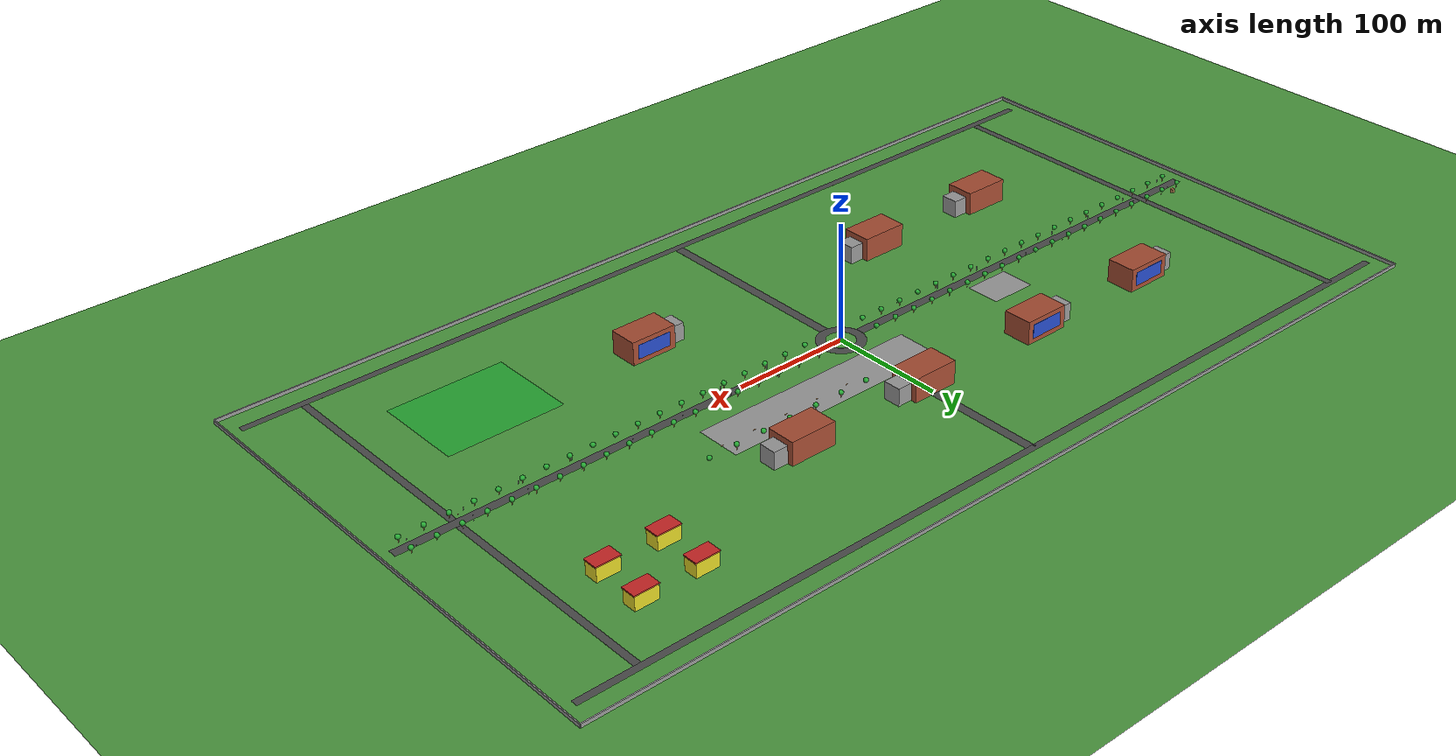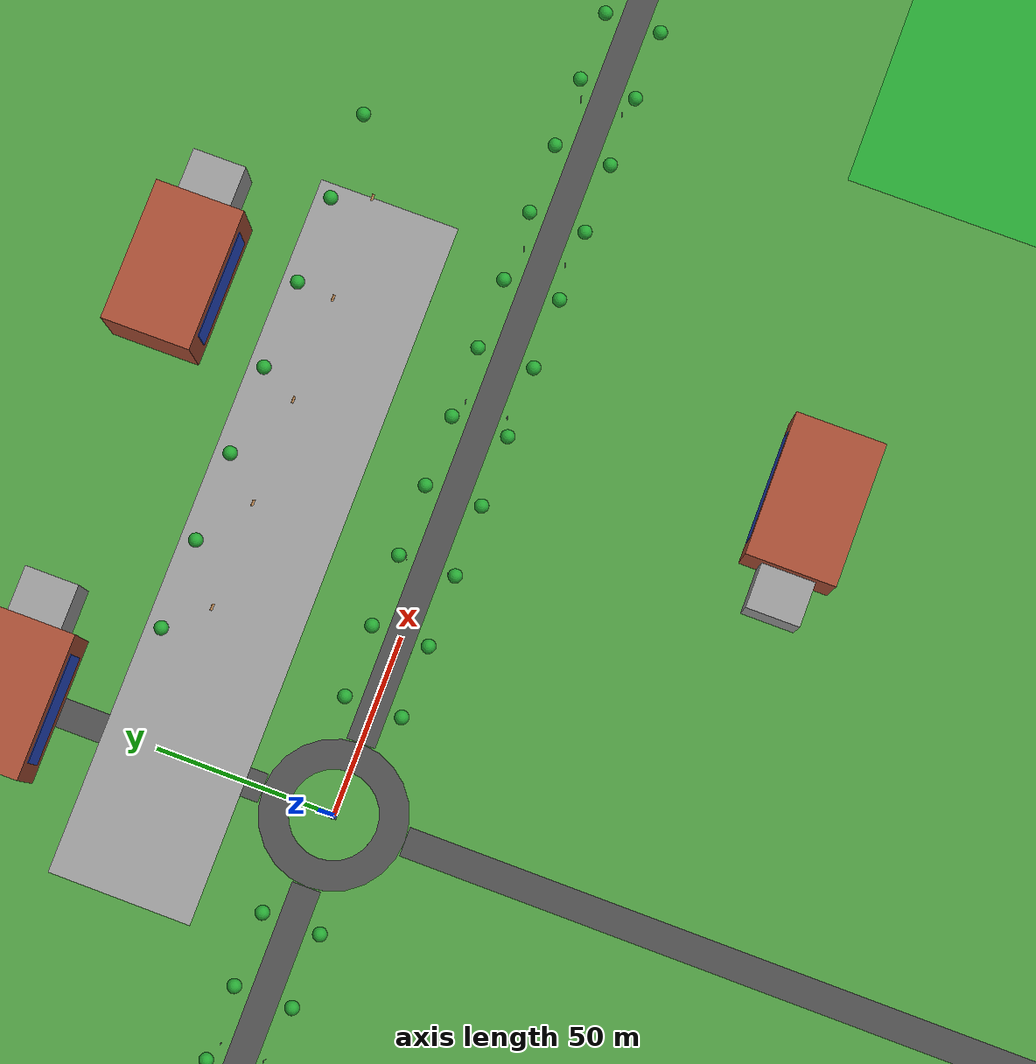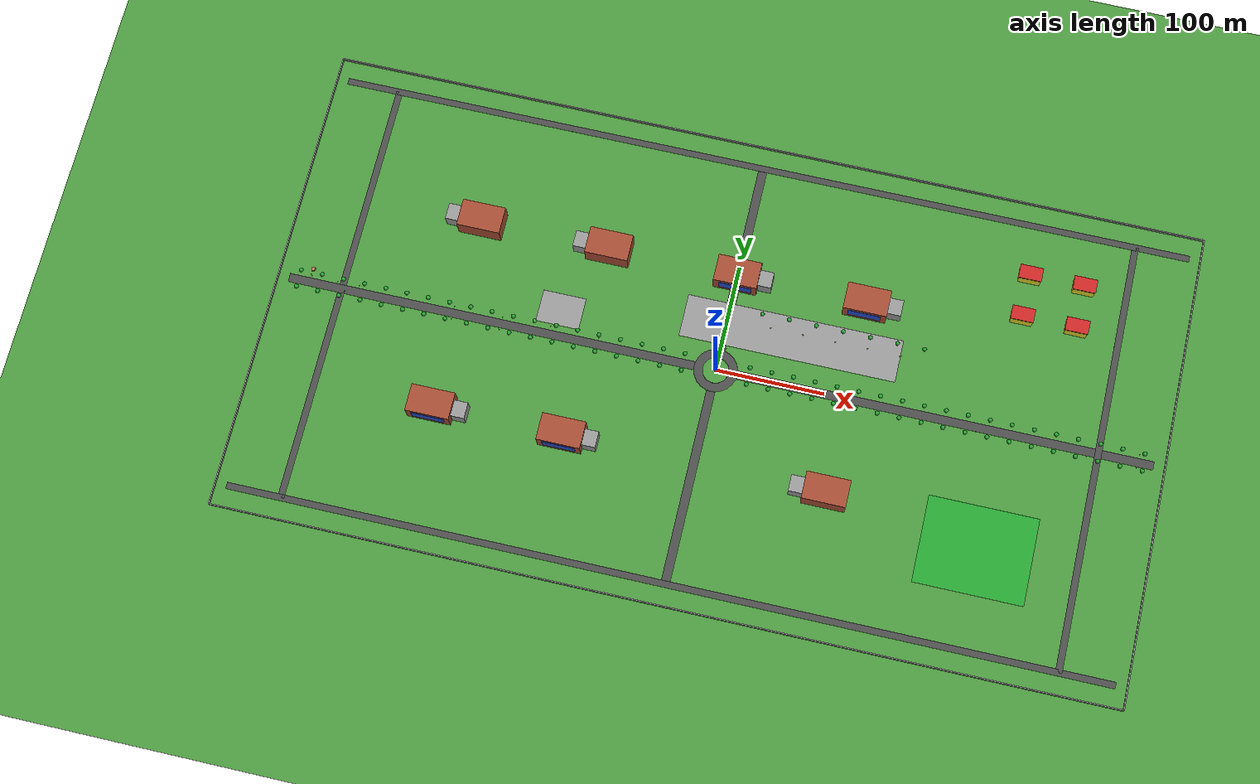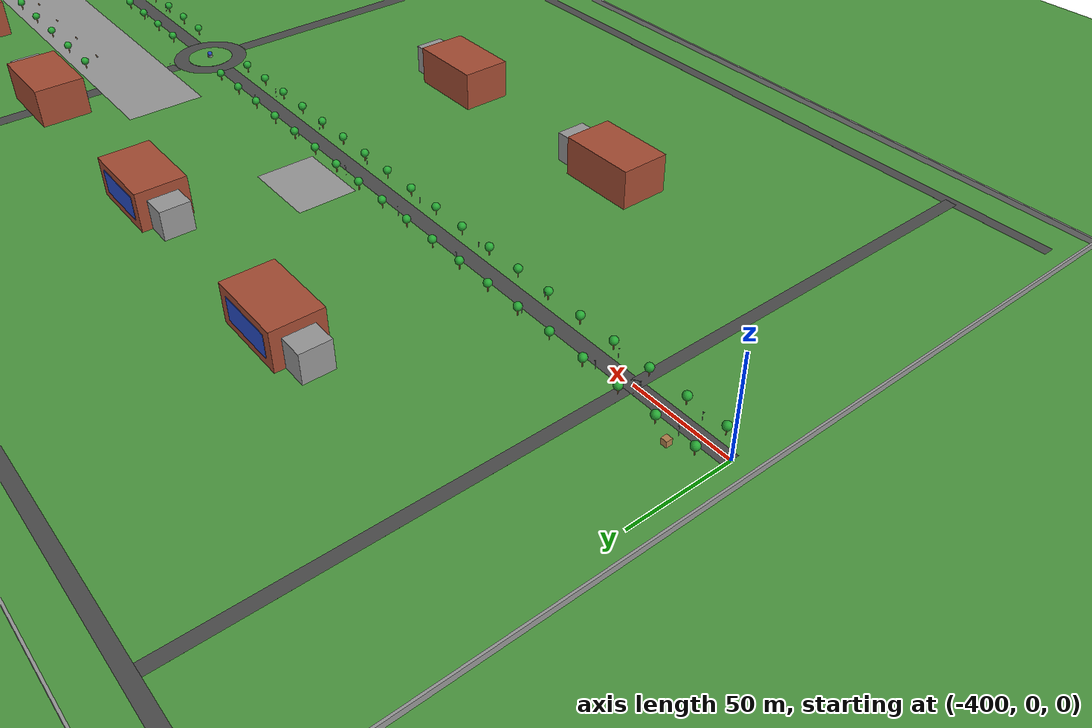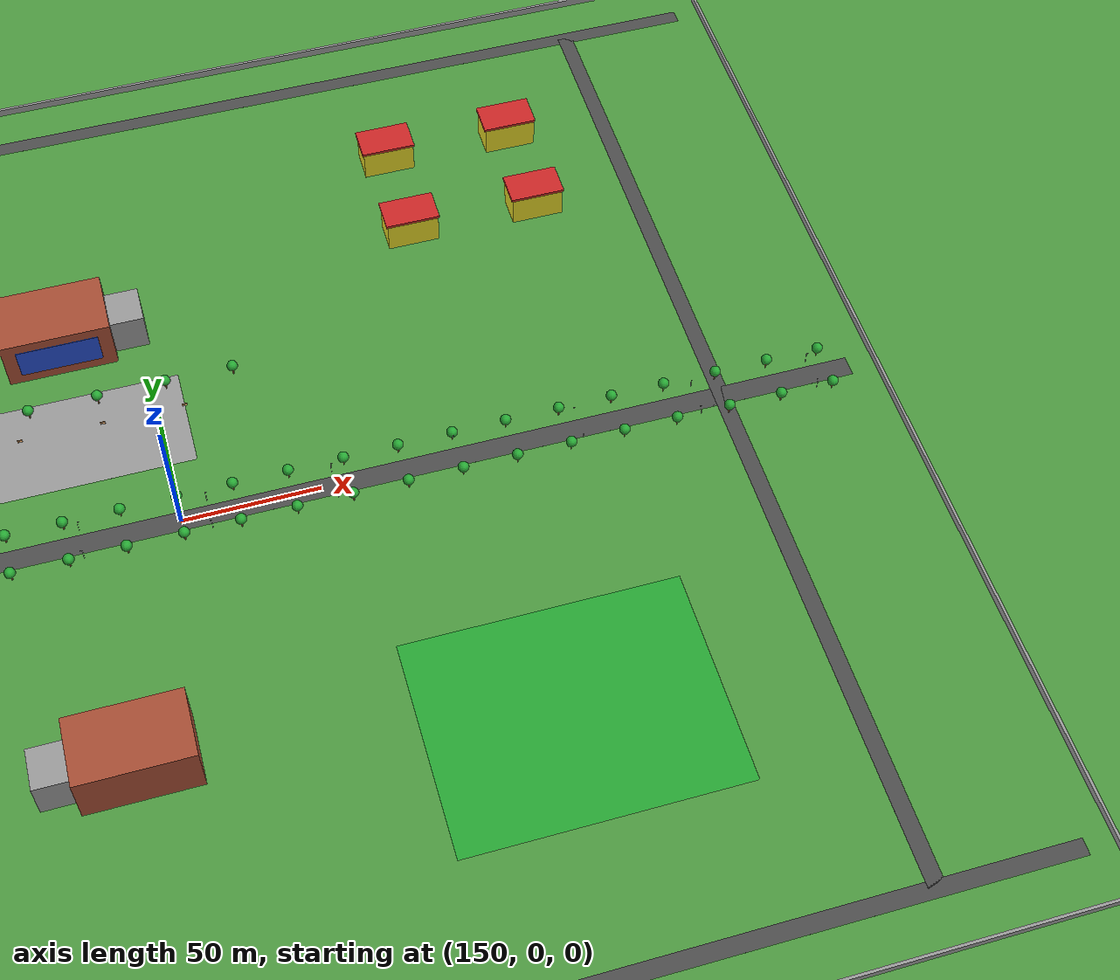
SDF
<sdf version="1.6">
 <world name="campus_world">
  <light name="sun" type="directional">
   <pose>0 0 50 0 0 0</pose>
   <diffuse>0.8 0.8 0.8 1</diffuse>
   <specular>0.1 0.1 0.1 1</specular>
   <attenuation>
    <range>1000</range>
    <constant>0.9</constant>
    <linear>0.01</linear>
    <quadratic>0.001</quadratic>
   </attenuation>
   <direction>-0.5 0.1 -0.9</direction>
  </light>
  <model name="ground_plane">
   <static>true</static>
   <link name="link">
    <collision name="collision">
     <geometry><plane><normal>0 0 1</normal><size>1000 1000</size></plane></geometry>
     <surface><friction><ode><mu>0.8</mu><mu2>0.8</mu2></ode></friction></surface>
    </collision>
    <visual name="visual">
     <cast_shadows>false</cast_shadows>
     <geometry><plane><normal>0 0 1</normal><size>1000 1000</size></plane></geometry>
     <material>
      <script><uri>file://media/materials/scripts/gazebo.material</uri><name>Gazebo/Grass</name></script>
     </material>
    </visual>
   </link>
  </model>
  <model name="road_main_west">
   <static>true</static>
   <link name="link">
    <visual name="visual">
     <pose>-210 0 0.002 0 0 0</pose>
     <geometry><box><size>380 8 0.004</size></box></geometry>
     <material>
      <script><uri>file://media/materials/scripts/gazebo.material</uri><name>Gazebo/Road</name></script>
     </material>
    </visual>
    <collision name="collision">
     <pose>-210 0 0.002 0 0 0</pose>
     <geometry><box><size>380 8 0.004</size></box></geometry>
    </collision>
   </link>
  </model>
  <model name="road_main_east">
   <static>true</static>
   <link name="link">
    <visual name="visual">
     <pose>210 0 0.002 0 0 0</pose>
     <geometry><box><size>380 8 0.004</size></box></geometry>
     <material>
      <script><uri>file://media/materials/scripts/gazebo.material</uri><name>Gazebo/Road</name></script>
     </material>
    </visual>
    <collision name="collision">
     <pose>210 0 0.002 0 0 0</pose>
     <geometry><box><size>380 8 0.004</size></box></geometry>
    </collision>
   </link>
  </model>
  <model name="road_north">
   <static>true</static>
   <link name="link">
    <visual name="visual">
     <pose>0 200 0.002 0 0 0</pose>
     <geometry><box><size>800 6 0.004</size></box></geometry>
     <material>
      <script><uri>file://media/materials/scripts/gazebo.material</uri><name>Gazebo/Road</name></script>
     </material>
    </visual>
    <collision name="collision">
     <pose>0 200 0.002 0 0 0</pose>
     <geometry><box><size>800 6 0.004</size></box></geometry>
    </collision>
   </link>
  </model>
  <model name="road_south">
   <static>true</static>
   <link name="link">
    <visual name="visual">
     <pose>0 -200 0.002 0 0 0</pose>
     <geometry><box><size>800 6 0.004</size></box></geometry>
     <material>
      <script><uri>file://media/materials/scripts/gazebo.material</uri><name>Gazebo/Road</name></script>
     </material>
    </visual>
    <collision name="collision">
     <pose>0 -200 0.002 0 0 0</pose>
     <geometry><box><size>800 6 0.004</size></box></geometry>
    </collision>
   </link>
  </model>
  <model name="road_conn_west">
   <static>true</static>
   <link name="link">
    <visual name="visual">
     <pose>-350 0 0.002 0 0 0</pose>
     <geometry><box><size>6 400 0.004</size></box></geometry>
     <material>
      <script><uri>file://media/materials/scripts/gazebo.material</uri><name>Gazebo/Road</name></script>
     </material>
    </visual>
    <collision name="collision">
     <pose>-350 0 0.002 0 0 0</pose>
     <geometry><box><size>6 400 0.004</size></box></geometry>
    </collision>
   </link>
  </model>
  <model name="road_conn_east">
   <static>true</static>
   <link name="link">
    <visual name="visual">
     <pose>350 0 0.002 0 0 0</pose>
     <geometry><box><size>6 400 0.004</size></box></geometry>
     <material>
      <script><uri>file://media/materials/scripts/gazebo.material</uri><name>Gazebo/Road</name></script>
     </material>
    </visual>
    <collision name="collision">
     <pose>350 0 0.002 0 0 0</pose>
     <geometry><box><size>6 400 0.004</size></box></geometry>
    </collision>
   </link>
  </model>
  <model name="road_conn_central_north">
   <static>true</static>
   <link name="link">
    <visual name="visual">
     <pose>0 110 0.002 0 0 0</pose>
     <geometry><box><size>8 180 0.004</size></box></geometry>
     <material>
      <script><uri>file://media/materials/scripts/gazebo.material</uri><name>Gazebo/Road</name></script>
     </material>
    </visual>
    <collision name="collision">
     <pose>0 110 0.002 0 0 0</pose>
     <geometry><box><size>8 180 0.004</size></box></geometry>
    </collision>
   </link>
  </model>
  <model name="road_conn_central_south">
   <static>true</static>
   <link name="link">
    <visual name="visual">
     <pose>0 -110 0.002 0 0 0</pose>
     <geometry><box><size>8 180 0.004</size></box></geometry>
     <material>
      <script><uri>file://media/materials/scripts/gazebo.material</uri><name>Gazebo/Road</name></script>
     </material>
    </visual>
    <collision name="collision">
     <pose>0 -110 0.002 0 0 0</pose>
     <geometry><box><size>8 180 0.004</size></box></geometry>
    </collision>
   </link>
  </model>
  <model name="roundabout_road">
   <static>true</static>
   <link name="link">
    <visual name="visual">
     <pose>0 0 0.001 0 0 0</pose>
     <geometry><cylinder><radius>20.0</radius><length>0.002</length></cylinder></geometry>
     <material>
      <script><uri>file://media/materials/scripts/gazebo.material</uri><name>Gazebo/Road</name></script>
     </material>
    </visual>
    <collision name="collision">
     <pose>0 0 0.001 0 0 0</pose>
     <geometry><cylinder><radius>20.0</radius><length>0.002</length></cylinder></geometry>
    </collision>
   </link>
  </model>
  <model name="roundabout_island">
   <static>true</static>
   <link name="link">
    <visual name="visual">
     <pose>0 0 0.08 0 0 0</pose>
     <geometry><cylinder><radius>12.0</radius><length>0.16</length></cylinder></geometry>
     <material>
      <script><uri>file://media/materials/scripts/gazebo.material</uri><name>Gazebo/Grass</name></script>
     </material>
    </visual>
    <collision name="collision">
     <pose>0 0 0.08 0 0 0</pose>
     <geometry><cylinder><radius>12.0</radius><length>0.16</length></cylinder></geometry>
    </collision>
   </link>
  </model>
  <model name="roundabout_statue">
   <static>true</static>
   <pose>0 0 0.16 0 0 0</pose>
   <link name="link">
    <visual name="pedestal">
     <pose>0 0 0.5 0 0 0</pose>
     <geometry><box><size>2.0 2.0 1.0</size></box></geometry>
     <material>
      <script><uri>file://media/materials/scripts/gazebo.material</uri><name>Gazebo/Grey</name></script>
     </material>
    </visual>
    <visual name="art">
     <pose>0 0 2.0 0 0 0</pose>
     <geometry><sphere><radius>1.2</radius></sphere></geometry>
     <material>
      <script>
       <uri>file://media/materials/scripts/gazebo.material</uri>
       <name>Gazebo/ClearBlueHighlight</name>
      </script>
     </material>
    </visual>
    <collision name="collision">
     <pose>0 0 1.5 0 0 0</pose>
     <geometry><cylinder><radius>1.5</radius><length>3.0</length></cylinder></geometry>
    </collision>
   </link>
  </model>
  <include>
   <name>admin_building</name>
   <uri>model://academic_building</uri>
   <pose>0 90 0 0 0 3.1415</pose>
  </include>
  <include><name>library</name><uri>model://academic_building</uri><pose>120 90 0 0 0 3.1415</pose></include>
  <include><name>academic_a</name><uri>model://academic_building</uri><pose>-120 90 0 0 0 0.0</pose></include>
  <include><name>academic_b</name><uri>model://academic_building</uri><pose>-240 90 0 0 0 0.0</pose></include>
  <include><name>auditorium</name><uri>model://academic_building</uri><pose>120 -90 0 0 0 0.0</pose></include>
  <include>
   <name>cafeteria</name>
   <uri>model://academic_building</uri>
   <pose>-120 -90 0 0 0 3.1415</pose>
  </include>
  <include>
   <name>laboratories</name>
   <uri>model://academic_building</uri>
   <pose>-240 -90 0 0 0 3.1415</pose>
  </include>
  <include><name>hostel_a</name><uri>model://campus_house</uri><pose>260 110 0 0 0 0.0</pose></include>
  <include><name>hostel_b</name><uri>model://campus_house</uri><pose>260 150 0 0 0 0.0</pose></include>
  <include><name>hostel_c</name><uri>model://campus_house</uri><pose>310 110 0 0 0 3.1415</pose></include>
  <include><name>hostel_d</name><uri>model://campus_house</uri><pose>310 150 0 0 0 3.1415</pose></include>
  <model name="library_plaza">
   <static>true</static>
   <link name="link">
    <visual name="visual">
     <pose>60 45 0.005 0 0 0</pose>
     <geometry><box><size>200 40 0.002</size></box></geometry>
     <material>
      <script><uri>file://media/materials/scripts/gazebo.material</uri><name>Gazebo/Grey</name></script>
     </material>
    </visual>
    <collision name="collision">
     <pose>60 45 0.005 0 0 0</pose>
     <geometry><box><size>200 40 0.002</size></box></geometry>
    </collision>
   </link>
  </model>
  <model name="sports_ground">
   <static>true</static>
   <link name="link">
    <visual name="visual">
     <pose>260 -110 0.003 0 0 0</pose>
     <geometry><box><size>100 80 0.001</size></box></geometry>
     <material>
      <script><uri>file://media/materials/scripts/gazebo.material</uri><name>Gazebo/Green</name></script>
     </material>
    </visual>
   </link>
  </model>
  <model name="entrance_security_cabin">
   <static>true</static>
   <pose>-380 12 0 0 0 0</pose>
   <link name="link">
    <visual name="cabin">
     <pose>0 0 1.5 0 0 0</pose>
     <geometry><box><size>3 3 3</size></box></geometry>
     <material>
      <script><uri>file://media/materials/scripts/gazebo.material</uri><name>Gazebo/Wood</name></script>
     </material>
    </visual>
    <collision name="collision">
     <pose>0 0 1.5 0 0 0</pose>
     <geometry><box><size>3 3 3</size></box></geometry>
    </collision>
   </link>
  </model>
  <model name="parking_lot">
   <static>true</static>
   <link name="link">
    <visual name="visual">
     <pose>-150 25 0.003 0 0 0</pose>
     <geometry><box><size>40 30 0.002</size></box></geometry>
     <material>
      <script><uri>file://media/materials/scripts/gazebo.material</uri><name>Gazebo/Grey</name></script>
     </material>
    </visual>
    <collision name="collision">
     <pose>-150 25 0.003 0 0 0</pose>
     <geometry><box><size>40 30 0.002</size></box></geometry>
    </collision>
   </link>
  </model>
  <include>
   <name>street_light_main_n_0</name>
   <uri>model://street_light</uri>
   <pose>-380 6.0 0 0 0 0</pose>
  </include>
  <include>
   <name>street_light_main_s_0</name>
   <uri>model://street_light</uri>
   <pose>-380 -6.0 0 0 0 3.1415</pose>
  </include>
  <include>
   <name>street_light_main_n_1</name>
   <uri>model://street_light</uri>
   <pose>-335 6.0 0 0 0 0</pose>
  </include>
  <include>
   <name>street_light_main_s_1</name>
   <uri>model://street_light</uri>
   <pose>-335 -6.0 0 0 0 3.1415</pose>
  </include>
  <include>
   <name>street_light_main_n_2</name>
   <uri>model://street_light</uri>
   <pose>-290 6.0 0 0 0 0</pose>
  </include>
  <include>
   <name>street_light_main_s_2</name>
   <uri>model://street_light</uri>
   <pose>-290 -6.0 0 0 0 3.1415</pose>
  </include>
  <include>
   <name>street_light_main_n_3</name>
   <uri>model://street_light</uri>
   <pose>-245 6.0 0 0 0 0</pose>
  </include>
  <include>
   <name>street_light_main_s_3</name>
   <uri>model://street_light</uri>
   <pose>-245 -6.0 0 0 0 3.1415</pose>
  </include>
  <include>
   <name>street_light_main_n_4</name>
   <uri>model://street_light</uri>
   <pose>-200 6.0 0 0 0 0</pose>
  </include>
  <include>
   <name>street_light_main_s_4</name>
   <uri>model://street_light</uri>
   <pose>-200 -6.0 0 0 0 3.1415</pose>
  </include>
  <include>
   <name>street_light_main_n_5</name>
   <uri>model://street_light</uri>
   <pose>-155 6.0 0 0 0 0</pose>
  </include>
  <include>
   <name>street_light_main_s_5</name>
   <uri>model://street_light</uri>
   <pose>-155 -6.0 0 0 0 3.1415</pose>
  </include>
  <include>
   <name>street_light_main_n_6</name>
   <uri>model://street_light</uri>
   <pose>-110 6.0 0 0 0 0</pose>
  </include>
  <include>
   <name>street_light_main_s_6</name>
   <uri>model://street_light</uri>
   <pose>-110 -6.0 0 0 0 3.1415</pose>
  </include>
  <include>
   <name>street_light_main_n_7</name>
   <uri>model://street_light</uri>
   <pose>-65 6.0 0 0 0 0</pose>
  </include>
  <include>
   <name>street_light_main_s_7</name>
   <uri>model://street_light</uri>
   <pose>-65 -6.0 0 0 0 3.1415</pose>
  </include>
  <include>
   <name>street_light_main_n_8</name>
   <uri>model://street_light</uri>
   <pose>70 6.0 0 0 0 0</pose>
  </include>
  <include>
   <name>street_light_main_s_8</name>
   <uri>model://street_light</uri>
   <pose>70 -6.0 0 0 0 3.1415</pose>
  </include>
  <include>
   <name>street_light_main_n_9</name>
   <uri>model://street_light</uri>
   <pose>115 6.0 0 0 0 0</pose>
  </include>
  <include>
   <name>street_light_main_s_9</name>
   <uri>model://street_light</uri>
   <pose>115 -6.0 0 0 0 3.1415</pose>
  </include>
  <include>
   <name>street_light_main_n_10</name>
   <uri>model://street_light</uri>
   <pose>160 6.0 0 0 0 0</pose>
  </include>
  <include>
   <name>street_light_main_s_10</name>
   <uri>model://street_light</uri>
   <pose>160 -6.0 0 0 0 3.1415</pose>
  </include>
  <include>
   <name>street_light_main_n_11</name>
   <uri>model://street_light</uri>
   <pose>205 6.0 0 0 0 0</pose>
  </include>
  <include>
   <name>street_light_main_s_11</name>
   <uri>model://street_light</uri>
   <pose>205 -6.0 0 0 0 3.1415</pose>
  </include>
  <include>
   <name>street_light_main_n_12</name>
   <uri>model://street_light</uri>
   <pose>250 6.0 0 0 0 0</pose>
  </include>
  <include>
   <name>street_light_main_s_12</name>
   <uri>model://street_light</uri>
   <pose>250 -6.0 0 0 0 3.1415</pose>
  </include>
  <include>
   <name>street_light_main_n_13</name>
   <uri>model://street_light</uri>
   <pose>295 6.0 0 0 0 0</pose>
  </include>
  <include>
   <name>street_light_main_s_13</name>
   <uri>model://street_light</uri>
   <pose>295 -6.0 0 0 0 3.1415</pose>
  </include>
  <include>
   <name>street_light_main_n_14</name>
   <uri>model://street_light</uri>
   <pose>340 6.0 0 0 0 0</pose>
  </include>
  <include>
   <name>street_light_main_s_14</name>
   <uri>model://street_light</uri>
   <pose>340 -6.0 0 0 0 3.1415</pose>
  </include>
  <include>
   <name>street_light_main_n_15</name>
   <uri>model://street_light</uri>
   <pose>385 6.0 0 0 0 0</pose>
  </include>
  <include>
   <name>street_light_main_s_15</name>
   <uri>model://street_light</uri>
   <pose>385 -6.0 0 0 0 3.1415</pose>
  </include>
  <include><name>tree_main_n_0</name><uri>model://campus_tree</uri><pose>-390 8.0 0 0 0 0</pose></include>
  <include><name>tree_main_s_0</name><uri>model://campus_tree</uri><pose>-390 -8.0 0 0 0 0</pose></include>
  <include><name>tree_main_n_1</name><uri>model://campus_tree</uri><pose>-370 8.0 0 0 0 0</pose></include>
  <include><name>tree_main_s_1</name><uri>model://campus_tree</uri><pose>-370 -8.0 0 0 0 0</pose></include>
  <include><name>tree_main_n_2</name><uri>model://campus_tree</uri><pose>-350 8.0 0 0 0 0</pose></include>
  <include><name>tree_main_s_2</name><uri>model://campus_tree</uri><pose>-350 -8.0 0 0 0 0</pose></include>
  <include><name>tree_main_n_3</name><uri>model://campus_tree</uri><pose>-330 8.0 0 0 0 0</pose></include>
  <include><name>tree_main_s_3</name><uri>model://campus_tree</uri><pose>-330 -8.0 0 0 0 0</pose></include>
  <include><name>tree_main_n_4</name><uri>model://campus_tree</uri><pose>-310 8.0 0 0 0 0</pose></include>
  <include><name>tree_main_s_4</name><uri>model://campus_tree</uri><pose>-310 -8.0 0 0 0 0</pose></include>
  <include><name>tree_main_n_5</name><uri>model://campus_tree</uri><pose>-290 8.0 0 0 0 0</pose></include>
  <include><name>tree_main_s_5</name><uri>model://campus_tree</uri><pose>-290 -8.0 0 0 0 0</pose></include>
  <include><name>tree_main_n_6</name><uri>model://campus_tree</uri><pose>-270 8.0 0 0 0 0</pose></include>
  <include><name>tree_main_s_6</name><uri>model://campus_tree</uri><pose>-270 -8.0 0 0 0 0</pose></include>
  <include><name>tree_main_n_7</name><uri>model://campus_tree</uri><pose>-250 8.0 0 0 0 0</pose></include>
  <include><name>tree_main_s_7</name><uri>model://campus_tree</uri><pose>-250 -8.0 0 0 0 0</pose></include>
  <include><name>tree_main_n_8</name><uri>model://campus_tree</uri><pose>-230 8.0 0 0 0 0</pose></include>
  <include><name>tree_main_s_8</name><uri>model://campus_tree</uri><pose>-230 -8.0 0 0 0 0</pose></include>
  <include><name>tree_main_n_9</name><uri>model://campus_tree</uri><pose>-210 8.0 0 0 0 0</pose></include>
  <include><name>tree_main_s_9</name><uri>model://campus_tree</uri><pose>-210 -8.0 0 0 0 0</pose></include>
  <include><name>tree_main_n_10</name><uri>model://campus_tree</uri><pose>-190 8.0 0 0 0 0</pose></include>
  <include><name>tree_main_s_10</name><uri>model://campus_tree</uri><pose>-190 -8.0 0 0 0 0</pose></include>
  <include><name>tree_main_n_11</name><uri>model://campus_tree</uri><pose>-170 8.0 0 0 0 0</pose></include>
  <include><name>tree_main_s_11</name><uri>model://campus_tree</uri><pose>-170 -8.0 0 0 0 0</pose></include>
  <include><name>tree_main_n_12</name><uri>model://campus_tree</uri><pose>-150 8.0 0 0 0 0</pose></include>
  <include><name>tree_main_s_12</name><uri>model://campus_tree</uri><pose>-150 -8.0 0 0 0 0</pose></include>
  <include><name>tree_main_n_13</name><uri>model://campus_tree</uri><pose>-130 8.0 0 0 0 0</pose></include>
  <include><name>tree_main_s_13</name><uri>model://campus_tree</uri><pose>-130 -8.0 0 0 0 0</pose></include>
  <include><name>tree_main_n_14</name><uri>model://campus_tree</uri><pose>-110 8.0 0 0 0 0</pose></include>
  <include><name>tree_main_s_14</name><uri>model://campus_tree</uri><pose>-110 -8.0 0 0 0 0</pose></include>
  <include><name>tree_main_n_15</name><uri>model://campus_tree</uri><pose>-90 8.0 0 0 0 0</pose></include>
  <include><name>tree_main_s_15</name><uri>model://campus_tree</uri><pose>-90 -8.0 0 0 0 0</pose></include>
  <include><name>tree_main_n_16</name><uri>model://campus_tree</uri><pose>-70 8.0 0 0 0 0</pose></include>
  <include><name>tree_main_s_16</name><uri>model://campus_tree</uri><pose>-70 -8.0 0 0 0 0</pose></include>
  <include><name>tree_main_n_17</name><uri>model://campus_tree</uri><pose>-50 8.0 0 0 0 0</pose></include>
  <include><name>tree_main_s_17</name><uri>model://campus_tree</uri><pose>-50 -8.0 0 0 0 0</pose></include>
  <include><name>tree_main_n_18</name><uri>model://campus_tree</uri><pose>-30 8.0 0 0 0 0</pose></include>
  <include><name>tree_main_s_18</name><uri>model://campus_tree</uri><pose>-30 -8.0 0 0 0 0</pose></include>
  <include><name>tree_main_n_19</name><uri>model://campus_tree</uri><pose>30 8.0 0 0 0 0</pose></include>
  <include><name>tree_main_s_19</name><uri>model://campus_tree</uri><pose>30 -8.0 0 0 0 0</pose></include>
  <include><name>tree_main_n_20</name><uri>model://campus_tree</uri><pose>50 8.0 0 0 0 0</pose></include>
  <include><name>tree_main_s_20</name><uri>model://campus_tree</uri><pose>50 -8.0 0 0 0 0</pose></include>
  <include><name>tree_main_n_21</name><uri>model://campus_tree</uri><pose>70 8.0 0 0 0 0</pose></include>
  <include><name>tree_main_s_21</name><uri>model://campus_tree</uri><pose>70 -8.0 0 0 0 0</pose></include>
  <include><name>tree_main_n_22</name><uri>model://campus_tree</uri><pose>90 8.0 0 0 0 0</pose></include>
  <include><name>tree_main_s_22</name><uri>model://campus_tree</uri><pose>90 -8.0 0 0 0 0</pose></include>
  <include><name>tree_main_n_23</name><uri>model://campus_tree</uri><pose>110 8.0 0 0 0 0</pose></include>
  <include><name>tree_main_s_23</name><uri>model://campus_tree</uri><pose>110 -8.0 0 0 0 0</pose></include>
  <include><name>tree_main_n_24</name><uri>model://campus_tree</uri><pose>130 8.0 0 0 0 0</pose></include>
  <include><name>tree_main_s_24</name><uri>model://campus_tree</uri><pose>130 -8.0 0 0 0 0</pose></include>
  <include><name>tree_main_n_25</name><uri>model://campus_tree</uri><pose>150 8.0 0 0 0 0</pose></include>
  <include><name>tree_main_s_25</name><uri>model://campus_tree</uri><pose>150 -8.0 0 0 0 0</pose></include>
  <include><name>tree_main_n_26</name><uri>model://campus_tree</uri><pose>170 8.0 0 0 0 0</pose></include>
  <include><name>tree_main_s_26</name><uri>model://campus_tree</uri><pose>170 -8.0 0 0 0 0</pose></include>
  <include><name>tree_main_n_27</name><uri>model://campus_tree</uri><pose>190 8.0 0 0 0 0</pose></include>
  <include><name>tree_main_s_27</name><uri>model://campus_tree</uri><pose>190 -8.0 0 0 0 0</pose></include>
  <include><name>tree_main_n_28</name><uri>model://campus_tree</uri><pose>210 8.0 0 0 0 0</pose></include>
  <include><name>tree_main_s_28</name><uri>model://campus_tree</uri><pose>210 -8.0 0 0 0 0</pose></include>
  <include><name>tree_main_n_29</name><uri>model://campus_tree</uri><pose>230 8.0 0 0 0 0</pose></include>
  <include><name>tree_main_s_29</name><uri>model://campus_tree</uri><pose>230 -8.0 0 0 0 0</pose></include>
  <include><name>tree_main_n_30</name><uri>model://campus_tree</uri><pose>250 8.0 0 0 0 0</pose></include>
  <include><name>tree_main_s_30</name><uri>model://campus_tree</uri><pose>250 -8.0 0 0 0 0</pose></include>
  <include><name>tree_main_n_31</name><uri>model://campus_tree</uri><pose>270 8.0 0 0 0 0</pose></include>
  <include><name>tree_main_s_31</name><uri>model://campus_tree</uri><pose>270 -8.0 0 0 0 0</pose></include>
  <include><name>tree_main_n_32</name><uri>model://campus_tree</uri><pose>290 8.0 0 0 0 0</pose></include>
  <include><name>tree_main_s_32</name><uri>model://campus_tree</uri><pose>290 -8.0 0 0 0 0</pose></include>
  <include><name>tree_main_n_33</name><uri>model://campus_tree</uri><pose>310 8.0 0 0 0 0</pose></include>
  <include><name>tree_main_s_33</name><uri>model://campus_tree</uri><pose>310 -8.0 0 0 0 0</pose></include>
  <include><name>tree_main_n_34</name><uri>model://campus_tree</uri><pose>330 8.0 0 0 0 0</pose></include>
  <include><name>tree_main_s_34</name><uri>model://campus_tree</uri><pose>330 -8.0 0 0 0 0</pose></include>
  <include><name>tree_main_n_35</name><uri>model://campus_tree</uri><pose>350 8.0 0 0 0 0</pose></include>
  <include><name>tree_main_s_35</name><uri>model://campus_tree</uri><pose>350 -8.0 0 0 0 0</pose></include>
  <include><name>tree_main_n_36</name><uri>model://campus_tree</uri><pose>370 8.0 0 0 0 0</pose></include>
  <include><name>tree_main_s_36</name><uri>model://campus_tree</uri><pose>370 -8.0 0 0 0 0</pose></include>
  <include><name>tree_main_n_37</name><uri>model://campus_tree</uri><pose>390 8.0 0 0 0 0</pose></include>
  <include><name>tree_main_s_37</name><uri>model://campus_tree</uri><pose>390 -8.0 0 0 0 0</pose></include>
  <include><name>tree_plaza_38</name><uri>model://campus_tree</uri><pose>30 60.0 0 0 0 0</pose></include>
  <include><name>tree_plaza_39</name><uri>model://campus_tree</uri><pose>55 60.0 0 0 0 0</pose></include>
  <include><name>tree_plaza_40</name><uri>model://campus_tree</uri><pose>80 60.0 0 0 0 0</pose></include>
  <include><name>tree_plaza_41</name><uri>model://campus_tree</uri><pose>105 60.0 0 0 0 0</pose></include>
  <include><name>tree_plaza_42</name><uri>model://campus_tree</uri><pose>130 60.0 0 0 0 0</pose></include>
  <include><name>tree_plaza_43</name><uri>model://campus_tree</uri><pose>155 60.0 0 0 0 0</pose></include>
  <include><name>tree_plaza_44</name><uri>model://campus_tree</uri><pose>180 60.0 0 0 0 0</pose></include>
  <include><name>bench_plaza_0</name><uri>model://campus_bench</uri><pose>40 50.0 0 0 0 0</pose></include>
  <include><name>bench_plaza_1</name><uri>model://campus_bench</uri><pose>70 50.0 0 0 0 0</pose></include>
  <include><name>bench_plaza_2</name><uri>model://campus_bench</uri><pose>100 50.0 0 0 0 0</pose></include>
  <include><name>bench_plaza_3</name><uri>model://campus_bench</uri><pose>130 50.0 0 0 0 0</pose></include>
  <include><name>bench_plaza_4</name><uri>model://campus_bench</uri><pose>160 50.0 0 0 0 0</pose></include>
  <include>
   <name>stop_sign_west_intersect</name>
   <uri>model://stop_sign</uri>
   <pose>-355 5 0 0 0 0</pose>
  </include>
  <include>
   <name>stop_sign_east_intersect</name>
   <uri>model://stop_sign</uri>
   <pose>345 -5 0 0 0 3.1415</pose>
  </include>
  <include>
   <name>stop_sign_central_north</name>
   <uri>model://stop_sign</uri>
   <pose>5 22 0 0 0 -1.5707</pose>
  </include>
  <include>
   <name>traffic_light_4way_north</name>
   <uri>model://traffic_light</uri>
   <pose>5 205 0 0 0 -1.5707</pose>
  </include>
  <include>
   <name>traffic_light_4way_south</name>
   <uri>model://traffic_light</uri>
   <pose>-5 -205 0 0 0 1.5707</pose>
  </include>
  <model name="boundary_wall_north">
   <static>true</static>
   <link name="link">
    <collision name="collision">
     <pose>0 220 1.5 0 0 0</pose>
     <geometry><box><size>820 1 3</size></box></geometry>
    </collision>
    <visual name="visual">
     <pose>0 220 1.5 0 0 0</pose>
     <geometry><box><size>820 1 3</size></box></geometry>
     <material>
      <script><uri>file://media/materials/scripts/gazebo.material</uri><name>Gazebo/Grey</name></script>
     </material>
    </visual>
   </link>
  </model>
  <model name="boundary_wall_south">
   <static>true</static>
   <link name="link">
    <collision name="collision">
     <pose>0 -220 1.5 0 0 0</pose>
     <geometry><box><size>820 1 3</size></box></geometry>
    </collision>
    <visual name="visual">
     <pose>0 -220 1.5 0 0 0</pose>
     <geometry><box><size>820 1 3</size></box></geometry>
     <material>
      <script><uri>file://media/materials/scripts/gazebo.material</uri><name>Gazebo/Grey</name></script>
     </material>
    </visual>
   </link>
  </model>
  <model name="boundary_wall_east">
   <static>true</static>
   <link name="link">
    <collision name="collision">
     <pose>410 0 1.5 0 0 0</pose>
     <geometry><box><size>1 440 3</size></box></geometry>
    </collision>
    <visual name="visual">
     <pose>410 0 1.5 0 0 0</pose>
     <geometry><box><size>1 440 3</size></box></geometry>
     <material>
      <script><uri>file://media/materials/scripts/gazebo.material</uri><name>Gazebo/Grey</name></script>
     </material>
    </visual>
   </link>
  </model>
  <model name="boundary_wall_west">
   <static>true</static>
   <link name="link">
    <collision name="collision">
     <pose>-410 0 1.5 0 0 0</pose>
     <geometry><box><size>1 440 3</size></box></geometry>
    </collision>
    <visual name="visual">
     <pose>-410 0 1.5 0 0 0</pose>
     <geometry><box><size>1 440 3</size></box></geometry>
     <material>
      <script><uri>file://media/materials/scripts/gazebo.material</uri><name>Gazebo/Grey</name></script>
     </material>
    </visual>
   </link>
  </model>
  <physics type="ode">
   <max_step_size>0.001</max_step_size>
   <real_time_factor>1.0</real_time_factor>
   <real_time_update_rate>1000</real_time_update_rate>
  </physics>
 </world>
</sdf>

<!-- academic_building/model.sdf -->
<sdf version="1.6">
  <model name="academic_building">
    <static>true</static>
    <link name="link">
      <collision name="collision_main">
        <pose>0 0 10 0 0 0</pose>
        <geometry>
          <box>
            <size>40 25 20</size>
          </box>
        </geometry>
      </collision>
      <collision name="collision_wing">
        <pose>-25 0 7.5 0 0 0</pose>
        <geometry>
          <box>
            <size>15 15 15</size>
          </box>
        </geometry>
      </collision>
      <visual name="visual_main">
        <pose>0 0 10 0 0 0</pose>
        <geometry>
          <box>
            <size>40 25 20</size>
          </box>
        </geometry>
        <material>
          <script>
            <uri>file://media/materials/scripts/gazebo.material</uri>
            <name>Gazebo/Bricks</name>
          </script>
        </material>
      </visual>
      <visual name="visual_wing">
        <pose>-25 0 7.5 0 0 0</pose>
        <geometry>
          <box>
            <size>15 15 15</size>
          </box>
        </geometry>
        <material>
          <script>
            <uri>file://media/materials/scripts/gazebo.material</uri>
            <name>Gazebo/Grey</name>
          </script>
        </material>
      </visual>
      <visual name="visual_glass">
        <pose>0 12.6 10 0 0 0</pose>
        <geometry>
          <box>
            <size>30 0.2 12</size>
          </box>
        </geometry>
        <material>
          <script>
            <uri>file://media/materials/scripts/gazebo.material</uri>
            <name>Gazebo/ClearBlueHighlight</name>
          </script>
        </material>
      </visual>
    </link>
  </model>
</sdf>

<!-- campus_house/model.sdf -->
<sdf version="1.6">
  <model name="campus_house">
    <static>true</static>
    <link name="link">
      <collision name="collision">
        <pose>0 0 6 0 0 0</pose>
        <geometry>
          <box>
            <size>20 12 12</size>
          </box>
        </geometry>
      </collision>
      <visual name="visual_body">
        <pose>0 0 6 0 0 0</pose>
        <geometry>
          <box>
            <size>20 12 12</size>
          </box>
        </geometry>
        <material>
          <script>
            <uri>file://media/materials/scripts/gazebo.material</uri>
            <name>Gazebo/Yellow</name>
          </script>
        </material>
      </visual>
      <visual name="visual_roof">
        <pose>0 0 12.5 0 0 0</pose>
        <geometry>
          <box>
            <size>21 13 1</size>
          </box>
        </geometry>
        <material>
          <script>
            <uri>file://media/materials/scripts/gazebo.material</uri>
            <name>Gazebo/Red</name>
          </script>
        </material>
      </visual>
    </link>
  </model>
</sdf>

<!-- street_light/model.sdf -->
<sdf version="1.6">
  <model name="street_light">
    <static>true</static>
    <link name="link">
      <collision name="collision_post">
        <pose>0 0 2.5 0 0 0</pose>
        <geometry>
          <cylinder>
            <radius>0.08</radius>
            <length>5.0</length>
          </cylinder>
        </geometry>
      </collision>
      <visual name="visual_post">
        <pose>0 0 2.5 0 0 0</pose>
        <geometry>
          <cylinder>
            <radius>0.08</radius>
            <length>5.0</length>
          </cylinder>
        </geometry>
        <material>
          <script>
            <uri>file://media/materials/scripts/gazebo.material</uri>
            <name>Gazebo/Grey</name>
          </script>
        </material>
      </visual>
      <visual name="visual_head">
        <pose>0.3 0 5.0 0 0 0</pose>
        <geometry>
          <box>
            <size>0.6 0.2 0.15</size>
          </box>
        </geometry>
        <material>
          <script>
            <uri>file://media/materials/scripts/gazebo.material</uri>
            <name>Gazebo/DarkGrey</name>
          </script>
        </material>
      </visual>
      <light name="light_source" type="spot">
        <pose>0.5 0 4.8 0 1.5707 0</pose>
        <diffuse>0.8 0.8 0.5 1</diffuse>
        <specular>0.2 0.2 0.2 1</specular>
        <attenuation>
          <range>15</range>
          <constant>0.5</constant>
          <linear>0.05</linear>
          <quadratic>0.01</quadratic>
        </attenuation>
        <direction>0 0 -1</direction>
        <spot>
          <inner_angle>0.3</inner_angle>
          <outer_angle>0.8</outer_angle>
          <falloff>1.0</falloff>
        </spot>
        <cast_shadows>true</cast_shadows>
      </light>
    </link>
  </model>
</sdf>

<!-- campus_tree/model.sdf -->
<sdf version="1.6">
  <model name="campus_tree">
    <static>true</static>
    <link name="link">
      <collision name="collision_trunk">
        <pose>0 0 1.5 0 0 0</pose>
        <geometry>
          <cylinder>
            <radius>0.25</radius>
            <length>3.0</length>
          </cylinder>
        </geometry>
      </collision>
      <collision name="collision_canopy">
        <pose>0 0 4.5 0 0 0</pose>
        <geometry>
          <sphere>
            <radius>2.0</radius>
          </sphere>
        </geometry>
      </collision>
      <visual name="visual_trunk">
        <pose>0 0 1.5 0 0 0</pose>
        <geometry>
          <cylinder>
            <radius>0.25</radius>
            <length>3.0</length>
          </cylinder>
        </geometry>
        <material>
          <script>
            <uri>file://media/materials/scripts/gazebo.material</uri>
            <name>Gazebo/Wood</name>
          </script>
        </material>
      </visual>
      <visual name="visual_canopy">
        <pose>0 0 4.5 0 0 0</pose>
        <geometry>
          <sphere>
            <radius>2.0</radius>
          </sphere>
        </geometry>
        <material>
          <script>
            <uri>file://media/materials/scripts/gazebo.material</uri>
            <name>Gazebo/Green</name>
          </script>
        </material>
      </visual>
    </link>
  </model>
</sdf>

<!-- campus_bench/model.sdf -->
<sdf version="1.6">
  <model name="campus_bench">
    <static>true</static>
    <link name="link">
      <collision name="collision_seat">
        <pose>0 0 0.4 0 0 0</pose>
        <geometry>
          <box>
            <size>1.8 0.6 0.08</size>
          </box>
        </geometry>
      </collision>
      <visual name="visual_seat">
        <pose>0 0 0.4 0 0 0</pose>
        <geometry>
          <box>
            <size>1.8 0.6 0.08</size>
          </box>
        </geometry>
        <material>
          <script>
            <uri>file://media/materials/scripts/gazebo.material</uri>
            <name>Gazebo/Wood</name>
          </script>
        </material>
      </visual>
      <visual name="visual_backrest">
        <pose>0 0.26 0.8 0.2 0 0</pose>
        <geometry>
          <box>
            <size>1.8 0.08 0.5</size>
          </box>
        </geometry>
        <material>
          <script>
            <uri>file://media/materials/scripts/gazebo.material</uri>
            <name>Gazebo/Wood</name>
          </script>
        </material>
      </visual>
      <visual name="visual_leg_left">
        <pose>-0.8 0 0.2 0 0 0</pose>
        <geometry>
          <box>
            <size>0.1 0.5 0.4</size>
          </box>
        </geometry>
        <material>
          <script>
            <uri>file://media/materials/scripts/gazebo.material</uri>
            <name>Gazebo/Grey</name>
          </script>
        </material>
      </visual>
      <visual name="visual_leg_right">
        <pose>0.8 0 0.2 0 0 0</pose>
        <geometry>
          <box>
            <size>0.1 0.5 0.4</size>
          </box>
        </geometry>
        <material>
          <script>
            <uri>file://media/materials/scripts/gazebo.material</uri>
            <name>Gazebo/Grey</name>
          </script>
        </material>
      </visual>
    </link>
  </model>
</sdf>

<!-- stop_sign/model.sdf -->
<sdf version="1.6">
  <model name="stop_sign">
    <static>true</static>
    <link name="link">
      <collision name="collision_post">
        <pose>0 0 1.0 0 0 0</pose>
        <geometry>
          <cylinder>
            <radius>0.04</radius>
            <length>2.0</length>
          </cylinder>
        </geometry>
      </collision>
      <visual name="visual_post">
        <pose>0 0 1.0 0 0 0</pose>
        <geometry>
          <cylinder>
            <radius>0.04</radius>
            <length>2.0</length>
          </cylinder>
        </geometry>
        <material>
          <script>
            <uri>file://media/materials/scripts/gazebo.material</uri>
            <name>Gazebo/Grey</name>
          </script>
        </material>
      </visual>
      <visual name="visual_board">
        <pose>0 0 2.2 0 1.5707 0</pose>
        <geometry>
          <cylinder>
            <radius>0.25</radius>
            <length>0.04</length>
          </cylinder>
        </geometry>
        <material>
          <script>
            <uri>file://media/materials/scripts/gazebo.material</uri>
            <name>Gazebo/Red</name>
          </script>
        </material>
      </visual>
      <visual name="visual_white_border">
        <pose>0.021 0 2.2 0 1.5707 0</pose>
        <geometry>
          <cylinder>
            <radius>0.22</radius>
            <length>0.002</length>
          </cylinder>
        </geometry>
        <material>
          <script>
            <uri>file://media/materials/scripts/gazebo.material</uri>
            <name>Gazebo/White</name>
          </script>
        </material>
      </visual>
    </link>
  </model>
</sdf>

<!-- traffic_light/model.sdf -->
<sdf version="1.6">
  <model name="traffic_light">
    <static>true</static>
    <link name="link">
      <collision name="collision_post">
        <pose>0 0 1.5 0 0 0</pose>
        <geometry>
          <cylinder>
            <radius>0.08</radius>
            <length>3.0</length>
          </cylinder>
        </geometry>
      </collision>
      <visual name="visual_post">
        <pose>0 0 1.5 0 0 0</pose>
        <geometry>
          <cylinder>
            <radius>0.08</radius>
            <length>3.0</length>
          </cylinder>
        </geometry>
        <material>
          <script>
            <uri>file://media/materials/scripts/gazebo.material</uri>
            <name>Gazebo/Grey</name>
          </script>
        </material>
      </visual>
      <visual name="visual_box">
        <pose>0.1 0 3.2 0 0 0</pose>
        <geometry>
          <box>
            <size>0.3 0.3 0.8</size>
          </box>
        </geometry>
        <material>
          <script>
            <uri>file://media/materials/scripts/gazebo.material</uri>
            <name>Gazebo/DarkGrey</name>
          </script>
        </material>
      </visual>
      <visual name="visual_red">
        <pose>0.26 0 3.5 0 0 0</pose>
        <geometry>
          <sphere>
            <radius>0.08</radius>
          </sphere>
        </geometry>
        <material>
          <script>
            <uri>file://media/materials/scripts/gazebo.material</uri>
            <name>Gazebo/Red</name>
          </script>
        </material>
      </visual>
      <visual name="visual_yellow">
        <pose>0.26 0 3.2 0 0 0</pose>
        <geometry>
          <sphere>
            <radius>0.08</radius>
          </sphere>
        </geometry>
        <material>
          <script>
            <uri>file://media/materials/scripts/gazebo.material</uri>
            <name>Gazebo/Yellow</name>
          </script>
        </material>
      </visual>
      <visual name="visual_green">
        <pose>0.26 0 2.9 0 0 0</pose>
        <geometry>
          <sphere>
            <radius>0.08</radius>
          </sphere>
        </geometry>
        <material>
          <script>
            <uri>file://media/materials/scripts/gazebo.material</uri>
            <name>Gazebo/Green</name>
          </script>
        </material>
      </visual>
    </link>
  </model>
</sdf>
